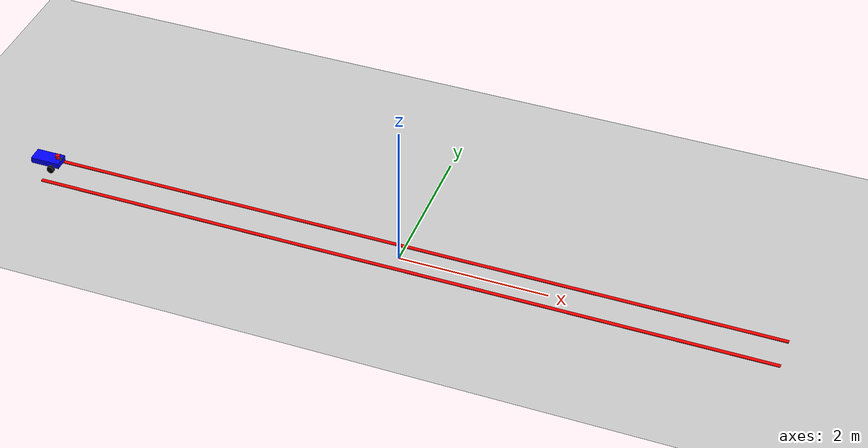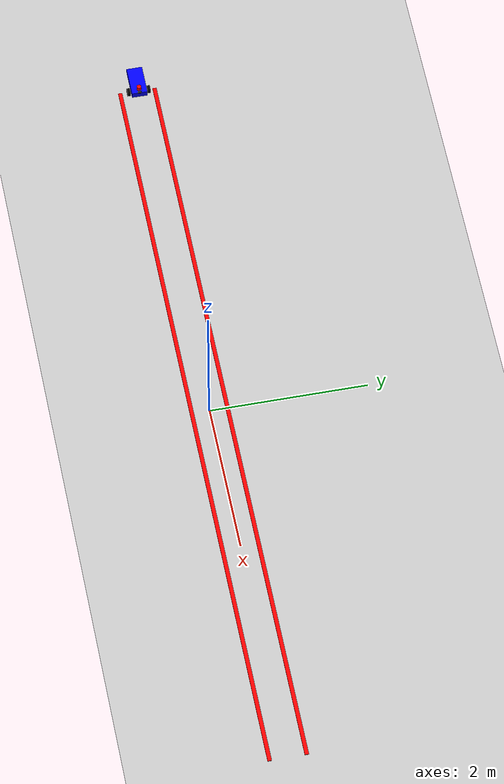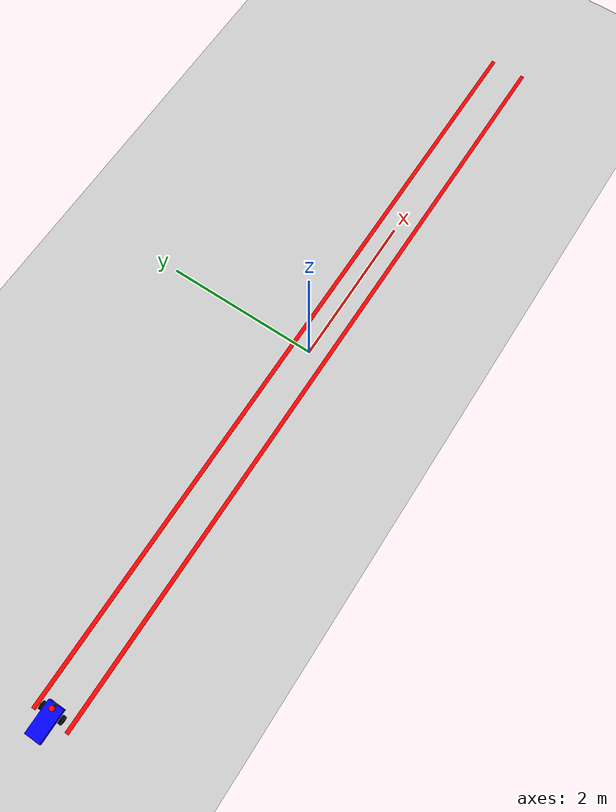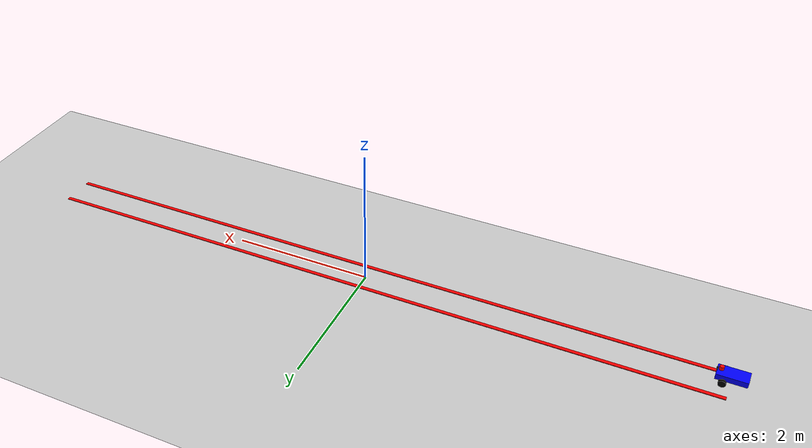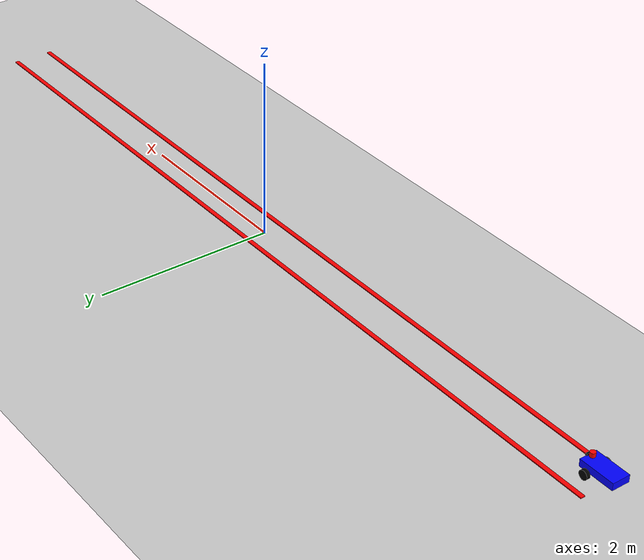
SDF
<?xml version="1.0" ?>
<sdf version="1.9">
  <world name="lane_world">

    <plugin filename="gz-sim-physics-system" name="gz::sim::systems::Physics"/>
    <plugin filename="gz-sim-sensors-system" name="gz::sim::systems::Sensors">
      <render_engine>ogre2</render_engine>
    </plugin>
    <plugin filename="gz-sim-scene-broadcaster-system" name="gz::sim::systems::SceneBroadcaster"/>
    <plugin filename="gz-sim-user-commands-system" name="gz::sim::systems::UserCommands"/>

    <physics type="ode">
      <max_step_size>0.004</max_step_size>
      <real_time_update_rate>250</real_time_update_rate>
    </physics>

    <scene>
      <shadows>false</shadows>
    </scene>

    <include>
      <uri>https://fuel.gazebosim.org/1.0/OpenRobotics/models/Sun</uri>
    </include>

    <model name="ground_plane">
      <static>true</static>
      <link name="link">
        <collision name="collision">
          <geometry><plane><normal>0 0 1</normal><size>50 50</size></plane></geometry>
        </collision>
        <visual name="visual">
          <geometry><plane><normal>0 0 1</normal><size>50 50</size></plane></geometry>
          <material><ambient>0.8 0.8 0.8 1</ambient><diffuse>0.8 0.8 0.8 1</diffuse></material>
        </visual>
      </link>
    </model>

    <model name="left_lane">
      <static>true</static>
      <pose>0 0.225 0.01 0 0 0</pose>
      <link name="link">
        <visual name="visual">
          <geometry><box><size>10 0.05 0.01</size></box></geometry>
          <material><ambient>1 0 0 1</ambient><diffuse>1 0 0 1</diffuse></material>
        </visual>
      </link>
    </model>

    <model name="right_lane">
      <static>true</static>
      <pose>0 -0.225 0.01 0 0 0</pose>
      <link name="link">
        <visual name="visual">
          <geometry><box><size>10 0.05 0.01</size></box></geometry>
          <material><ambient>1 0 0 1</ambient><diffuse>1 0 0 1</diffuse></material>
        </visual>
      </link>
    </model>
<model name="my_robot">
      <pose>-5 0 0.2 0 0 0</pose> <link name="base_link">
        <inertial>
          <mass>1.5</mass>
          <inertia>
            <ixx>0.01</ixx><iyy>0.01</iyy><izz>0.01</izz>
          </inertia>
        </inertial>
        <visual name="visual">
          <geometry><box><size>0.4 0.2 0.08</size></box></geometry> <material><ambient>0 0 1 1</ambient><diffuse>0 0 1 1</diffuse></material>
        </visual>
        <collision name="collision">
          <geometry><box><size>0.4 0.2 0.08</size></box></geometry>
        </collision>
      </link>

      <link name="left_wheel">
        <pose>0.1 0.13 -0.05 -1.5707 0 0</pose>
        <inertial> <mass>0.5</mass>
          <inertia>
            <ixx>0.001</ixx><iyy>0.001</iyy><izz>0.001</izz>
          </inertia>
        </inertial>
        <collision name="collision">
          <geometry><cylinder><radius>0.05</radius><length>0.04</length></cylinder></geometry>
        </collision>
        <visual name="visual">
          <geometry><cylinder><radius>0.05</radius><length>0.04</length></cylinder></geometry>
          <material><ambient>0 0 0 1</ambient><diffuse>0 0 0 1</diffuse></material>
        </visual>
      </link>

      <link name="right_wheel">
        <pose>0.1 -0.13 -0.05 -1.5707 0 0</pose>
        <inertial> <mass>0.5</mass>
          <inertia>
            <ixx>0.001</ixx><iyy>0.001</iyy><izz>0.001</izz>
          </inertia>
        </inertial>
        <collision name="collision">
          <geometry><cylinder><radius>0.05</radius><length>0.04</length></cylinder></geometry>
        </collision>
        <visual name="visual">
          <geometry><cylinder><radius>0.05</radius><length>0.04</length></cylinder></geometry>
          <material><ambient>0 0 0 1</ambient><diffuse>0 0 0 1</diffuse></material>
        </visual>
      </link>

      <link name="caster">
        <pose>-0.15 0 -0.075 0 0 0</pose>
        <inertial>
          <mass>0.1</mass>
          <inertia>
            <ixx>0.0001</ixx><iyy>0.0001</iyy><izz>0.0001</izz>
          </inertia>
        </inertial>
        <collision name="collision">
          <geometry><sphere><radius>0.025</radius></sphere></geometry>
          <surface>
            <friction>
              <ode><mu>0.1</mu><mu2>0.1</mu2></ode>
            </friction>
          </surface>
        </collision>
      </link>

      <joint name="left_wheel_joint" type="revolute">
        <parent>base_link</parent>
        <child>left_wheel</child>
        <axis>
          <xyz>0 0 1</xyz> </axis>
      </joint>

      <joint name="right_wheel_joint" type="revolute">
        <parent>base_link</parent>
        <child>right_wheel</child>
        <axis>
          <xyz>0 0 1</xyz>
        </axis>
      </joint>

      <joint name="caster_joint" type="ball">
        <parent>base_link</parent>
        <child>caster</child>
      </joint>

      <link name="lidar_link">
        <pose>0.15 0 0.08 0 0 0</pose>
        <visual name="visual">
          <geometry><cylinder><radius>0.03</radius><length>0.05</length></cylinder></geometry>
          <material><ambient>1 0 0 1</ambient><diffuse>1 0 0 1</diffuse></material>
        </visual>
        <sensor name="gpu_lidar" type="gpu_lidar">
          <topic>scan</topic>
          <update_rate>10</update_rate>
          <ray>
            <scan>
              <horizontal><samples>360</samples><min_angle>-3.14</min_angle><max_angle>3.14</max_angle></horizontal>
            </scan>
            <range><min>0.1</min><max>10.0</max></range>
          </ray>
          <gz_frame_id>lidar_link</gz_frame_id>
        </sensor>
      </link>

      <joint name="lidar_joint" type="fixed">
        <parent>base_link</parent>
        <child>lidar_link</child>
      </joint>

      <plugin filename="gz-sim-diff-drive-system" name="gz::sim::systems::DiffDrive">
        <left_joint>left_wheel_joint</left_joint>
        <right_joint>right_wheel_joint</right_joint>
        <wheel_separation>0.26</wheel_separation>
        <wheel_radius>0.05</wheel_radius>
        <topic>cmd_vel</topic>
        <odom_topic>odom</odom_topic>
        <tf_topic>/tf</tf_topic>
      </plugin>
<link name="camera_link">
  <pose>0.2 0 0.05 0 0 0</pose> <visual name="visual">
    <geometry><box><size>0.02 0.05 0.02</size></box></geometry>
    <material><ambient>0 0 0 1</ambient><diffuse>0 0 0 1</diffuse></material>
  </visual>
  <sensor name="camera" type="camera">
    <pose>0 0 0 0 0 0</pose>
    <visualize>true</visualize>
    <update_rate>30</update_rate>
    <topic>camera/image_raw</topic>
    <gz_frame_id>camera_link</gz_frame_id>
    <camera>
      <horizontal_fov>1.089</horizontal_fov>
      <image>
        <width>640</width>
        <height>480</height>
        <format>R8G8B8</format>
      </image>
      <clip>
        <near>0.05</near>
        <far>100</far>
      </clip>
    </camera>
  </sensor>
</link>

<joint name="camera_joint" type="fixed">
  <parent>base_link</parent>
  <child>camera_link</child>
</joint>
    </model>

  </world>
</sdf>
